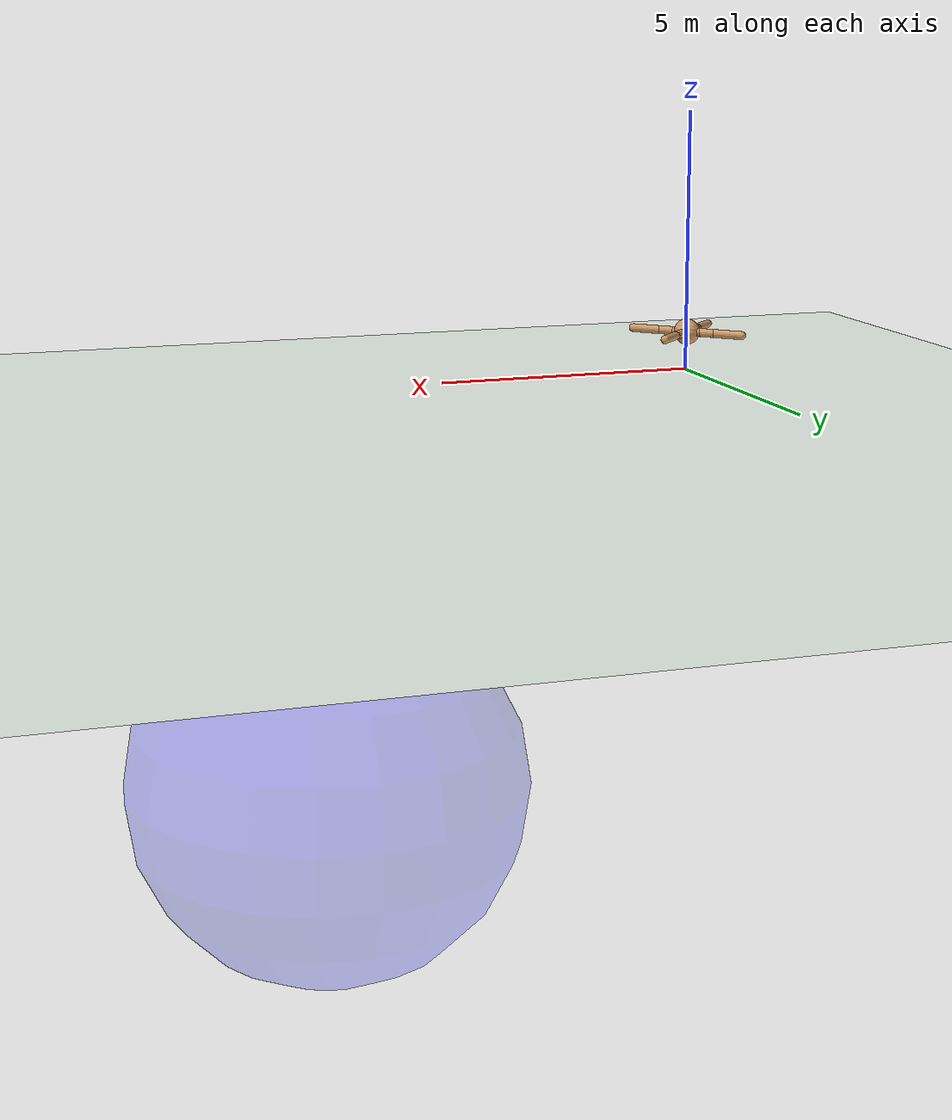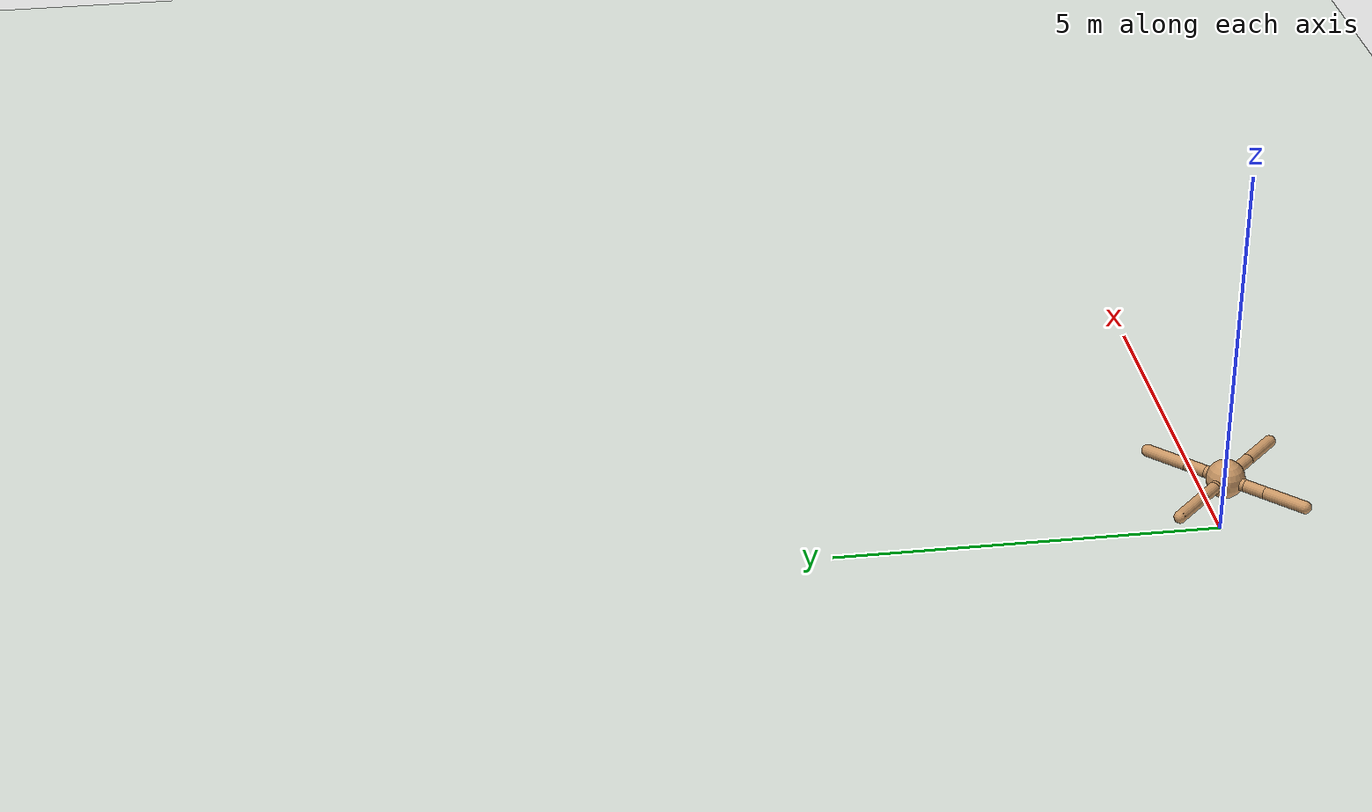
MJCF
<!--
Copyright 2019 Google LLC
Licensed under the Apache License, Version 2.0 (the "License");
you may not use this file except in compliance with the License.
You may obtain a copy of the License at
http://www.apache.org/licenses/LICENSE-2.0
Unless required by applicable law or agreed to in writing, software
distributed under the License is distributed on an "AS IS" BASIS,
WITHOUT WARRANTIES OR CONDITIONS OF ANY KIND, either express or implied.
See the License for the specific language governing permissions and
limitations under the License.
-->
<mujoco model="ant">
  <compiler angle="degree" coordinate="local" inertiafromgeom="true"/>
  <option integrator="RK4" timestep="0.01"/>
  <custom>
    <numeric data="0.0 0.0 0.55 1.0 0.0 0.0 0.0 0.0 1.0 0.0 -1.0 0.0 -1.0 0.0 1.0" name="init_qpos"/>
  </custom>
  <default>
    <joint armature="1" damping="1" limited="true"/>
    <geom conaffinity="0" condim="3" density="5.0" friction="1 0.5 0.5" margin="0.01" rgba="0.8 0.6 0.4 1"/>
  </default>
  <asset>
    <texture builtin="gradient" height="100" rgb1="1 1 1" rgb2="0 0 0" type="skybox" width="100"/>
    <texture builtin="flat" height="1278" mark="cross" markrgb="1 1 1" name="texgeom" random="0.01" rgb1="0.8 0.6 0.4" rgb2="0.8 0.6 0.4" type="cube" width="127"/>
    <texture builtin="checker" height="100" name="texplane" rgb1="0 0 0" rgb2="0.8 0.8 0.8" type="2d" width="100"/>
    <material name="MatPlane" reflectance="0.5" shininess="1" specular="1" texrepeat="60 60" texture="texplane"/>
    <material name="geom" texture="texgeom" texuniform="true"/>
  </asset>
  <worldbody>
    <light cutoff="100" diffuse="1 1 1" dir="-0 0 -1.3" directional="true" exponent="1" pos="0 0 1.3" specular=".1 .1 .1"/>
    <geom conaffinity="1" condim="3" material="MatPlane" name="floor" pos="0 0 0" rgba="0.8 0.9 0.8 1" size="40 40 40" type="plane"/>
    <camera name="fixed"  pos="-30 30 30" xyaxes="-1 -1 0 1 0 1" mode="fixed" fovy="60"/>
    <body name="torso" pos="0 0 0.75">
      <geom name="torso_geom" pos="0 0 0" size="0.25" type="sphere"/>
      <joint armature="0" damping="0" limited="false" margin="0.01" name="root" pos="0 0 0" type="free"/>
      <body name="front_left_leg" pos="0 0 0">
        <geom fromto="0.0 0.0 0.0 0.2 0.2 0.0" name="aux_1_geom" size="0.08" type="capsule"/>
        <body name="aux_1" pos="0.2 0.2 0">
          <joint axis="0 0 1" name="hip_1" pos="0.0 0.0 0.0" range="-30 30" type="hinge"/>
          <geom fromto="0.0 0.0 0.0 0.2 0.2 0.0" name="left_leg_geom" size="0.08" type="capsule"/>
          <body pos="0.2 0.2 0">
            <joint axis="-1 1 0" name="ankle_1" pos="0.0 0.0 0.0" range="30 70" type="hinge"/>
            <geom fromto="0.0 0.0 0.0 0.4 0.4 0.0" name="left_ankle_geom" size="0.08" type="capsule"/>
          </body>
        </body>
      </body>
      <body name="front_right_leg" pos="0 0 0">
        <geom fromto="0.0 0.0 0.0 -0.2 0.2 0.0" name="aux_2_geom" size="0.08" type="capsule"/>
        <body name="aux_2" pos="-0.2 0.2 0">
          <joint axis="0 0 1" name="hip_2" pos="0.0 0.0 0.0" range="-30 30" type="hinge"/>
          <geom fromto="0.0 0.0 0.0 -0.2 0.2 0.0" name="right_leg_geom" size="0.08" type="capsule"/>
          <body pos="-0.2 0.2 0">
            <joint axis="1 1 0" name="ankle_2" pos="0.0 0.0 0.0" range="-70 -30" type="hinge"/>
            <geom fromto="0.0 0.0 0.0 -0.4 0.4 0.0" name="right_ankle_geom" size="0.08" type="capsule"/>
          </body>
        </body>
      </body>
      <body name="back_leg" pos="0 0 0">
        <geom fromto="0.0 0.0 0.0 -0.2 -0.2 0.0" name="aux_3_geom" size="0.08" type="capsule"/>
        <body name="aux_3" pos="-0.2 -0.2 0">
          <joint axis="0 0 1" name="hip_3" pos="0.0 0.0 0.0" range="-30 30" type="hinge"/>
          <geom fromto="0.0 0.0 0.0 -0.2 -0.2 0.0" name="back_leg_geom" size="0.08" type="capsule"/>
          <body pos="-0.2 -0.2 0">
            <joint axis="-1 1 0" name="ankle_3" pos="0.0 0.0 0.0" range="-70 -30" type="hinge"/>
            <geom fromto="0.0 0.0 0.0 -0.4 -0.4 0.0" name="third_ankle_geom" size="0.08" type="capsule"/>
          </body>
        </body>
      </body>
      <body name="right_back_leg" pos="0 0 0">
        <geom fromto="0.0 0.0 0.0 0.2 -0.2 0.0" name="aux_4_geom" size="0.08" type="capsule"/>
        <body name="aux_4" pos="0.2 -0.2 0">
          <joint axis="0 0 1" name="hip_4" pos="0.0 0.0 0.0" range="-30 30" type="hinge"/>
          <geom fromto="0.0 0.0 0.0 0.2 -0.2 0.0" name="rightback_leg_geom" size="0.08" type="capsule"/>
          <body pos="0.2 -0.2 0">
            <joint axis="1 1 0" name="ankle_4" pos="0.0 0.0 0.0" range="30 70" type="hinge"/>
            <geom fromto="0.0 0.0 0.0 0.4 -0.4 0.0" name="fourth_ankle_geom" size="0.08" type="capsule"/>
          </body>
        </body>
      </body>
    </body>

    <body name="block_0" pos="10 10 -4">
      <geom name="blocky_boi_0" pos="0 0 0" size="3" rgba="0.0 0.0 1.0 0.25" conaffinity="1" type="sphere"/>
    </body>
    <body name="block_1" pos="10 10 -4">
      <geom name="blocky_boi_1" pos="0 0 0" size="3" rgba="0.0 0.0 1.0 0.25" conaffinity="1" type="sphere"/>
    </body>
    <body name="block_2" pos="10 10 -4">
      <geom name="blocky_boi_2" pos="0 0 0" size="3" rgba="0.0 0.0 1.0 0.25" conaffinity="1" type="sphere"/>
    </body>
    <body name="block_3" pos="10 10 -4">
      <geom name="blocky_boi_3" pos="0 0 0" size="3" rgba="0.0 0.0 1.0 0.25" conaffinity="1" type="sphere"/>
    </body>
    <body name="block_4" pos="10 10 -4">
      <geom name="blocky_boi_4" pos="0 0 0" size="3" rgba="0.0 0.0 1.0 0.25" conaffinity="1" type="sphere"/>
    </body>
    <body name="block_5" pos="10 10 -4">
      <geom name="blocky_boi_5" pos="0 0 0" size="3" rgba="0.0 0.0 1.0 0.25" conaffinity="1" type="sphere"/>
    </body>
    <body name="block_6" pos="10 10 -4">
      <geom name="blocky_boi_6" pos="0 0 0" size="3" rgba="0.0 0.0 1.0 0.25" conaffinity="1" type="sphere"/>
    </body>
    <body name="block_7" pos="10 10 -4">
      <geom name="blocky_boi_7" pos="0 0 0" size="3" rgba="0.0 0.0 1.0 0.25" conaffinity="1" type="sphere"/>
    </body>
    <body name="block_8" pos="10 10 -4">
      <geom name="blocky_boi_8" pos="0 0 0" size="3" rgba="0.0 0.0 1.0 0.25" conaffinity="1" type="sphere"/>
    </body>
    <body name="block_9" pos="10 10 -4">
      <geom name="blocky_boi_9" pos="0 0 0" size="3" rgba="0.0 0.0 1.0 0.25" conaffinity="1" type="sphere"/>
    </body>
    <body name="block_10" pos="10 10 -4">
      <geom name="blocky_boi_10" pos="0 0 0" size="3" rgba="0.0 0.0 1.0 0.25" conaffinity="1" type="sphere"/>
    </body>
    <body name="block_11" pos="10 10 -4">
      <geom name="blocky_boi_11" pos="0 0 0" size="3" rgba="0.0 0.0 1.0 0.25" conaffinity="1" type="sphere"/>
    </body>
    <body name="block_12" pos="10 10 -4">
      <geom name="blocky_boi_12" pos="0 0 0" size="3" rgba="0.0 0.0 1.0 0.25" conaffinity="1" type="sphere"/>
    </body>
    <body name="block_13" pos="10 10 -4">
      <geom name="blocky_boi_13" pos="0 0 0" size="3" rgba="0.0 0.0 1.0 0.25" conaffinity="1" type="sphere"/>
    </body>
    <body name="block_14" pos="10 10 -4">
      <geom name="blocky_boi_14" pos="0 0 0" size="3" rgba="0.0 0.0 1.0 0.25" conaffinity="1" type="sphere"/>
    </body>
    <body name="block_15" pos="10 10 -4">
      <geom name="blocky_boi_15" pos="0 0 0" size="3" rgba="0.0 0.0 1.0 0.25" conaffinity="1" type="sphere"/>
    </body>
    <body name="block_16" pos="10 10 -4">
      <geom name="blocky_boi_16" pos="0 0 0" size="3" rgba="0.0 0.0 1.0 0.25" conaffinity="1" type="sphere"/>
    </body>
    <body name="block_17" pos="10 10 -4">
      <geom name="blocky_boi_17" pos="0 0 0" size="3" rgba="0.0 0.0 1.0 0.25" conaffinity="1" type="sphere"/>
    </body>
    <body name="block_18" pos="10 10 -4">
      <geom name="blocky_boi_18" pos="0 0 0" size="3" rgba="0.0 0.0 1.0 0.25" conaffinity="1" type="sphere"/>
    </body>
    <body name="block_19" pos="10 10 -4">
      <geom name="blocky_boi_19" pos="0 0 0" size="3" rgba="0.0 0.0 1.0 0.25" conaffinity="1" type="sphere"/>
    </body>
    <body name="block_20" pos="10 10 -4">
      <geom name="blocky_boi_20" pos="0 0 0" size="3" rgba="0.0 0.0 1.0 0.25" conaffinity="1" type="sphere"/>
    </body>
    <body name="block_21" pos="10 10 -4">
      <geom name="blocky_boi_21" pos="0 0 0" size="3" rgba="0.0 0.0 1.0 0.25" conaffinity="1" type="sphere"/>
    </body>
    <body name="block_22" pos="10 10 -4">
      <geom name="blocky_boi_22" pos="0 0 0" size="3" rgba="0.0 0.0 1.0 0.25" conaffinity="1" type="sphere"/>
    </body>
    <body name="block_23" pos="10 10 -4">
      <geom name="blocky_boi_23" pos="0 0 0" size="3" rgba="0.0 0.0 1.0 0.25" conaffinity="1" type="sphere"/>
    </body>
    <body name="block_24" pos="10 10 -4">
      <geom name="blocky_boi_24" pos="0 0 0" size="3" rgba="0.0 0.0 1.0 0.25" conaffinity="1" type="sphere"/>
    </body>
    <body name="block_25" pos="10 10 -4">
      <geom name="blocky_boi_25" pos="0 0 0" size="3" rgba="0.0 0.0 1.0 0.25" conaffinity="1" type="sphere"/>
    </body>
    <body name="block_26" pos="10 10 -4">
      <geom name="blocky_boi_26" pos="0 0 0" size="3" rgba="0.0 0.0 1.0 0.25" conaffinity="1" type="sphere"/>
    </body>
    <body name="block_27" pos="10 10 -4">
      <geom name="blocky_boi_27" pos="0 0 0" size="3" rgba="0.0 0.0 1.0 0.25" conaffinity="1" type="sphere"/>
    </body>
    <body name="block_28" pos="10 10 -4">
      <geom name="blocky_boi_28" pos="0 0 0" size="3" rgba="0.0 0.0 1.0 0.25" conaffinity="1" type="sphere"/>
    </body>
    <body name="block_29" pos="10 10 -4">
      <geom name="blocky_boi_29" pos="0 0 0" size="3" rgba="0.0 0.0 1.0 0.25" conaffinity="1" type="sphere"/>
    </body>
    <body name="block_30" pos="10 10 -4">
      <geom name="blocky_boi_30" pos="0 0 0" size="3" rgba="0.0 0.0 1.0 0.25" conaffinity="1" type="sphere"/>
    </body>
    <body name="block_31" pos="10 10 -4">
      <geom name="blocky_boi_31" pos="0 0 0" size="3" rgba="0.0 0.0 1.0 0.25" conaffinity="1" type="sphere"/>
    </body>
    <body name="block_32" pos="10 10 -4">
      <geom name="blocky_boi_32" pos="0 0 0" size="3" rgba="0.0 0.0 1.0 0.25" conaffinity="1" type="sphere"/>
    </body>
    <body name="block_33" pos="10 10 -4">
      <geom name="blocky_boi_33" pos="0 0 0" size="3" rgba="0.0 0.0 1.0 0.25" conaffinity="1" type="sphere"/>
    </body>
    <body name="block_34" pos="10 10 -4">
      <geom name="blocky_boi_34" pos="0 0 0" size="3" rgba="0.0 0.0 1.0 0.25" conaffinity="1" type="sphere"/>
    </body>
    <body name="block_35" pos="10 10 -4">
      <geom name="blocky_boi_35" pos="0 0 0" size="3" rgba="0.0 0.0 1.0 0.25" conaffinity="1" type="sphere"/>
    </body>
    <body name="block_36" pos="10 10 -4">
      <geom name="blocky_boi_36" pos="0 0 0" size="3" rgba="0.0 0.0 1.0 0.25" conaffinity="1" type="sphere"/>
    </body>
    <body name="block_37" pos="10 10 -4">
      <geom name="blocky_boi_37" pos="0 0 0" size="3" rgba="0.0 0.0 1.0 0.25" conaffinity="1" type="sphere"/>
    </body>
    <body name="block_38" pos="10 10 -4">
      <geom name="blocky_boi_38" pos="0 0 0" size="3" rgba="0.0 0.0 1.0 0.25" conaffinity="1" type="sphere"/>
    </body>
    <body name="block_39" pos="10 10 -4">
      <geom name="blocky_boi_39" pos="0 0 0" size="3" rgba="0.0 0.0 1.0 0.25" conaffinity="1" type="sphere"/>
    </body>
  </worldbody>
  <actuator>
    <motor ctrllimited="true" ctrlrange="-1.0 1.0" joint="hip_4" gear="150"/>
    <motor ctrllimited="true" ctrlrange="-1.0 1.0" joint="ankle_4" gear="150"/>
    <motor ctrllimited="true" ctrlrange="-1.0 1.0" joint="hip_1" gear="150"/>
    <motor ctrllimited="true" ctrlrange="-1.0 1.0" joint="ankle_1" gear="150"/>
    <motor ctrllimited="true" ctrlrange="-1.0 1.0" joint="hip_2" gear="150"/>
    <motor ctrllimited="true" ctrlrange="-1.0 1.0" joint="ankle_2" gear="150"/>
    <motor ctrllimited="true" ctrlrange="-1.0 1.0" joint="hip_3" gear="150"/>
    <motor ctrllimited="true" ctrlrange="-1.0 1.0" joint="ankle_3" gear="150"/>
  </actuator>
</mujoco>
